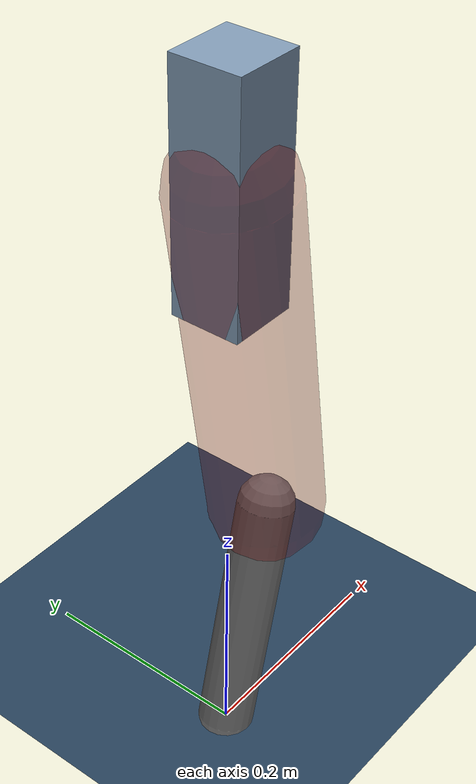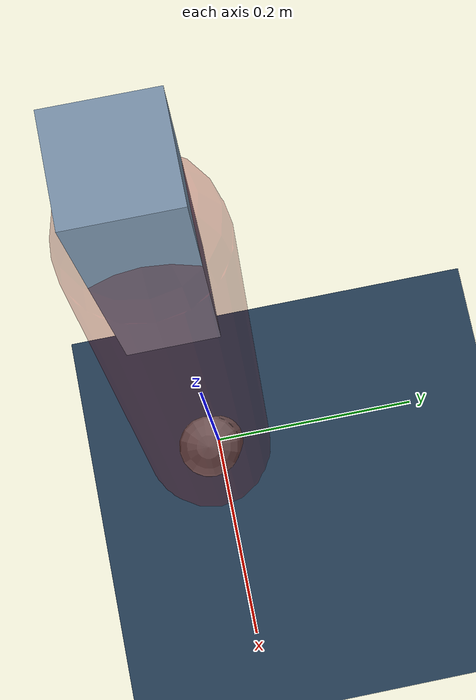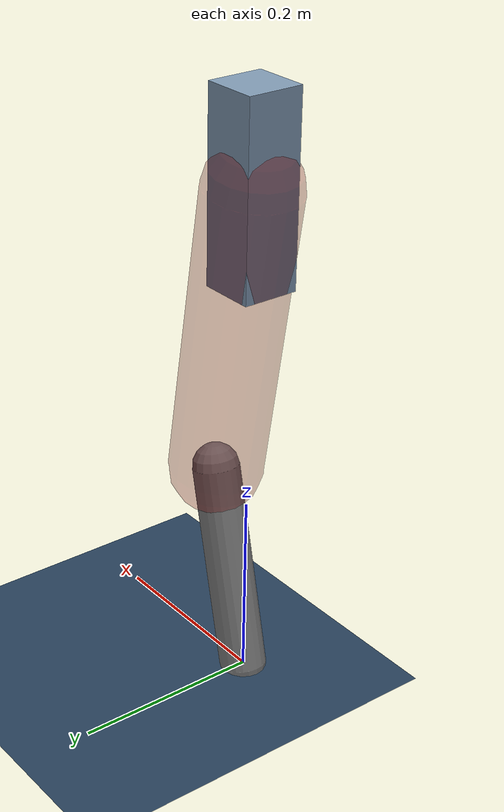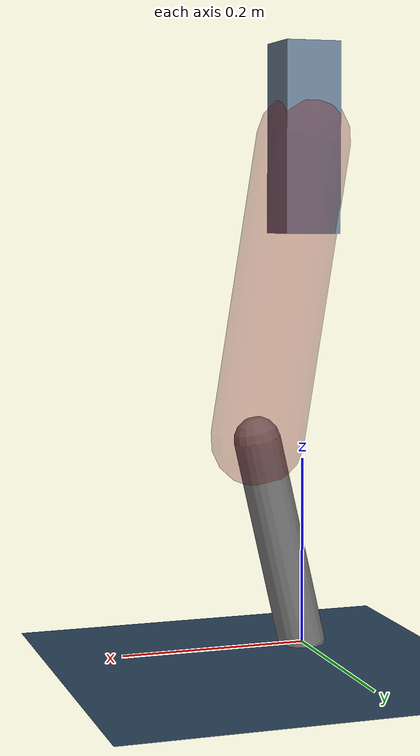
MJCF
<mujoco model="Hopper2D">
	<compiler inertiafromgeom="true" angle="radian" />
	<option timestep="0.001" integrator="implicit" cone="elliptic" solver="Newton" tolerance="1e-10" />

	<default>
		<geom contype="1" conaffinity="1" condim="3" friction="2 0.005 0.0001" solref="0.005 1" />
		<joint limited="true" damping="0.1" />
	</default>

	<asset>
		<texture name="skybox" type="skybox" builtin="gradient" rgb1=".4 .6 .8" rgb2="0 0 0" width="800" height="800" />
		<texture name="grid" type="2d" builtin="checker" rgb1=".1 .2 .3" rgb2=".2 .3 .4" width="300" height="300" mark="edge" markrgb=".2 .3 .4" />
		<material name="ground" texture="grid" texrepeat="1 1" texuniform="true" reflectance="0.1" />
		<material name="leg" rgba="0.5 0.6 0.7 1" />
	</asset>

	<worldbody>

		<geom name="floor" type="plane" size="5 5 0.25" material="ground" />

		<light directional="false" diffuse="0.8 0.8 0.8" specular="0.3 0.3 0.3" pos="0 0 2" dir="0 0 -1" />
		<light mode="targetbodycom" target="base" directional="false" diffuse="0.8 0.8 0.8" specular="0.3 0.3 0.3" pos="0 0 2" dir="0 0 -1" />

		<camera name="fixed" pos="0 -2 1" xyaxes="1 0 0 0 0 1" />
		<camera name="tracking" mode="trackcom" pos="0 -3 1" />

		<body name="root" pos="0 0 0.5411419410366394">
			<joint name="slide_x" type="slide" axis="1 0 0" range="-100 100" />
			<joint name="slide_z" type="slide" axis="0 0 1" range="0 10" />

			<body name="base" pos="0 0 0">
				<geom name="torso" type="box" size="0.03 0.03 0.1" mass="3.907" material="leg" />

				<body name="link1" pos="0 0 0" euler="0 1.4106236393160887 0">
					<joint type="hinge" axis="0 -1 0" pos="0 0 0" name="hinge1" limited="true" range="-3.14 3.14" stiffness="0" damping="0.1" />
					<geom name="thigh" type="capsule" fromto="0 0 0 0.32265023348659916 0 0" size="0.05" rgba="0.5 0 0 0.3" mass="1.0505206537624776" />

					<body name="link2" pos="0.32265023348659916 0 0" euler="0 0.38733325127351836 0">
						<joint type="hinge" axis="0 -1 0" pos="0 0 0" name="hinge2" limited="true" range="-3.14 3.14" stiffness="0" damping="0.1" />
						<geom name="shank" type="capsule" fromto="0 0 0 0.22849170755004022 0 0" size="0.025" mass="0.4247425367950362" />

					</body>
				</body>
			</body>
		</body>
	</worldbody>

	<actuator>
		<motor name="torque1" joint="hinge1" ctrlrange="-143.3895237635393 143.3895237635393" ctrllimited="true" gear="1" />
		<motor name="torque2" joint="hinge2" ctrlrange="-164.95820643372838 164.95820643372838" ctrllimited="true" gear="1" />
	</actuator>
</mujoco>
